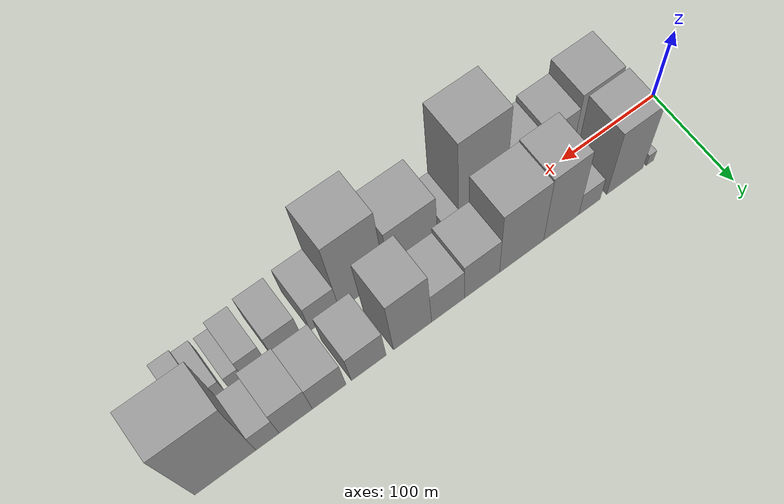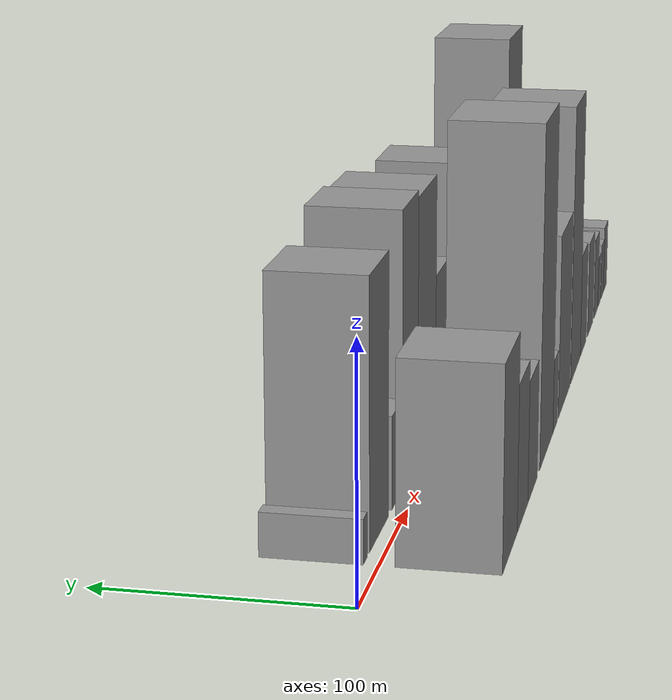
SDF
<sdf version="1.6">
 <world name="default">
  <scene>
   <sky><clouds><speed>12</speed></clouds></sky>
   <ambient>0.4 0.4 0.4 1</ambient>
   <background>0.7 0.7 0.7 1</background>
   <shadows>1</shadows>
  </scene>
  <gravity>0 0 -9.8066</gravity>
  <magnetic_field>6e-06 2.3e-05 -4.2e-05</magnetic_field>
  <physics default="0" name="default_physics" type="ode">
   <ode>
    <solver>
     <type>quick</type>
     <iters>10</iters>
     <sor>1.0</sor>
     <use_dynamic_moi_rescaling>0</use_dynamic_moi_rescaling>
    </solver>
    <constraints>
     <cfm>0</cfm>
     <erp>0.2</erp>
     <contact_max_correcting_vel>100</contact_max_correcting_vel>
     <contact_surface_layer>0.001</contact_surface_layer>
    </constraints>
   </ode>
   <max_step_size>0.004</max_step_size>
   <real_time_factor>1</real_time_factor>
   <real_time_update_rate>250</real_time_update_rate>
  </physics>
  <light name="sun" type="directional">
   <pose>0 0 10 0 0 0</pose>
   <diffuse>0.8 0.8 0.8 1</diffuse>
   <specular>0.2 0.2 0.2 1</specular>
   <attenuation>
    <range>1000</range>
    <constant>0.9</constant>
    <linear>0.01</linear>
    <quadratic>0.001</quadratic>
   </attenuation>
   <direction>-0.5 0.1 -0.9</direction>
  </light>
  <model name="building_1">
   <static>1</static>
   <pose>43.9411 26.0000 0 0.000000 0.000000 1.570796</pose>
   <link name="link">
    <pose>0 0 9.00 0 0 0</pose>
    <collision name="collision"><geometry><box><size>40.0000 7.8822 18.0000</size></box></geometry></collision>
    <visual name="visual">
     <cast_shadows>0</cast_shadows>
     <geometry><box><size>40.0000 7.8822 18.0000</size></box></geometry>
     <material>
      <script>
       <uri>model://grey_wall/materials/scripts</uri>
       <uri>model://grey_wall/materials/textures</uri>
       <name>vrc/grey_wall</name>
      </script>
     </material>
    </visual>
   </link>
  </model>
  <model name="building_2">
   <static>1</static>
   <pose>71.2316 26.0000 0 0.000000 0.000000 1.570796</pose>
   <link name="link">
    <pose>0 0 54.00 0 0 0</pose>
    <collision name="collision"><geometry><box><size>40.0000 38.6990 108.0000</size></box></geometry></collision>
    <visual name="visual">
     <cast_shadows>0</cast_shadows>
     <geometry><box><size>40.0000 38.6990 108.0000</size></box></geometry>
     <material>
      <script>
       <uri>model://grey_wall/materials/scripts</uri>
       <uri>model://grey_wall/materials/textures</uri>
       <name>vrc/grey_wall</name>
      </script>
     </material>
    </visual>
   </link>
  </model>
  <model name="building_3">
   <static>1</static>
   <pose>108.9111 26.0000 0 0.000000 0.000000 1.570796</pose>
   <link name="link">
    <pose>0 0 19.50 0 0 0</pose>
    <collision name="collision"><geometry><box><size>40.0000 22.6600 39.0000</size></box></geometry></collision>
    <visual name="visual">
     <cast_shadows>0</cast_shadows>
     <geometry><box><size>40.0000 22.6600 39.0000</size></box></geometry>
     <material>
      <script>
       <uri>model://grey_wall/materials/scripts</uri>
       <uri>model://grey_wall/materials/textures</uri>
       <name>vrc/grey_wall</name>
      </script>
     </material>
    </visual>
   </link>
  </model>
  <model name="building_4">
   <static>1</static>
   <pose>138.4646 26.0000 0 0.000000 0.000000 1.570796</pose>
   <link name="link">
    <pose>0 0 58.50 0 0 0</pose>
    <collision name="collision"><geometry><box><size>40.0000 36.4471 117.0000</size></box></geometry></collision>
    <visual name="visual">
     <cast_shadows>0</cast_shadows>
     <geometry><box><size>40.0000 36.4471 117.0000</size></box></geometry>
     <material>
      <script>
       <uri>model://grey_wall/materials/scripts</uri>
       <uri>model://grey_wall/materials/textures</uri>
       <name>vrc/grey_wall</name>
      </script>
     </material>
    </visual>
   </link>
  </model>
  <model name="building_5">
   <static>1</static>
   <pose>179.1929 26.0000 0 0.000000 0.000000 1.570796</pose>
   <link name="link">
    <pose>0 0 57.00 0 0 0</pose>
    <collision name="collision"><geometry><box><size>40.0000 45.0095 114.0000</size></box></geometry></collision>
    <visual name="visual">
     <cast_shadows>0</cast_shadows>
     <geometry><box><size>40.0000 45.0095 114.0000</size></box></geometry>
     <material>
      <script>
       <uri>model://grey_wall/materials/scripts</uri>
       <uri>model://grey_wall/materials/textures</uri>
       <name>vrc/grey_wall</name>
      </script>
     </material>
    </visual>
   </link>
  </model>
  <model name="building_6">
   <static>1</static>
   <pose>219.1872 26.0000 0 0.000000 0.000000 1.570796</pose>
   <link name="link">
    <pose>0 0 34.50 0 0 0</pose>
    <collision name="collision"><geometry><box><size>40.0000 34.9791 69.0000</size></box></geometry></collision>
    <visual name="visual">
     <cast_shadows>0</cast_shadows>
     <geometry><box><size>40.0000 34.9791 69.0000</size></box></geometry>
     <material>
      <script>
       <uri>model://grey_wall/materials/scripts</uri>
       <uri>model://grey_wall/materials/textures</uri>
       <name>vrc/grey_wall</name>
      </script>
     </material>
    </visual>
   </link>
  </model>
  <model name="building_7">
   <static>1</static>
   <pose>252.8555 26.0000 0 0.000000 0.000000 1.570796</pose>
   <link name="link">
    <pose>0 0 30.00 0 0 0</pose>
    <collision name="collision"><geometry><box><size>40.0000 32.3575 60.0000</size></box></geometry></collision>
    <visual name="visual">
     <cast_shadows>0</cast_shadows>
     <geometry><box><size>40.0000 32.3575 60.0000</size></box></geometry>
     <material>
      <script>
       <uri>model://grey_wall/materials/scripts</uri>
       <uri>model://grey_wall/materials/textures</uri>
       <name>vrc/grey_wall</name>
      </script>
     </material>
    </visual>
   </link>
  </model>
  <model name="building_8">
   <static>1</static>
   <pose>287.4369 26.0000 0 0.000000 0.000000 1.570796</pose>
   <link name="link">
    <pose>0 0 52.50 0 0 0</pose>
    <collision name="collision"><geometry><box><size>40.0000 36.8053 105.0000</size></box></geometry></collision>
    <visual name="visual">
     <cast_shadows>0</cast_shadows>
     <geometry><box><size>40.0000 36.8053 105.0000</size></box></geometry>
     <material>
      <script>
       <uri>model://grey_wall/materials/scripts</uri>
       <uri>model://grey_wall/materials/textures</uri>
       <name>vrc/grey_wall</name>
      </script>
     </material>
    </visual>
   </link>
  </model>
  <model name="building_9">
   <static>1</static>
   <pose>329.3068 26.0000 0 0.000000 0.000000 1.570796</pose>
   <link name="link">
    <pose>0 0 28.50 0 0 0</pose>
    <collision name="collision"><geometry><box><size>40.0000 32.9345 57.0000</size></box></geometry></collision>
    <visual name="visual">
     <cast_shadows>0</cast_shadows>
     <geometry><box><size>40.0000 32.9345 57.0000</size></box></geometry>
     <material>
      <script>
       <uri>model://grey_wall/materials/scripts</uri>
       <uri>model://grey_wall/materials/textures</uri>
       <name>vrc/grey_wall</name>
      </script>
     </material>
    </visual>
   </link>
  </model>
  <model name="building_10">
   <static>1</static>
   <pose>366.4222 26.0000 0 0.000000 0.000000 1.570796</pose>
   <link name="link">
    <pose>0 0 27.00 0 0 0</pose>
    <collision name="collision"><geometry><box><size>40.0000 31.2964 54.0000</size></box></geometry></collision>
    <visual name="visual">
     <cast_shadows>0</cast_shadows>
     <geometry><box><size>40.0000 31.2964 54.0000</size></box></geometry>
     <material>
      <script>
       <uri>model://grey_wall/materials/scripts</uri>
       <uri>model://grey_wall/materials/textures</uri>
       <name>vrc/grey_wall</name>
      </script>
     </material>
    </visual>
   </link>
  </model>
  <model name="building_11">
   <static>1</static>
   <pose>397.2394 26.0000 0 0.000000 0.000000 1.570796</pose>
   <link name="link">
    <pose>0 0 28.50 0 0 0</pose>
    <collision name="collision"><geometry><box><size>40.0000 30.3379 57.0000</size></box></geometry></collision>
    <visual name="visual">
     <cast_shadows>0</cast_shadows>
     <geometry><box><size>40.0000 30.3379 57.0000</size></box></geometry>
     <material>
      <script>
       <uri>model://grey_wall/materials/scripts</uri>
       <uri>model://grey_wall/materials/textures</uri>
       <name>vrc/grey_wall</name>
      </script>
     </material>
    </visual>
   </link>
  </model>
  <model name="building_12">
   <static>1</static>
   <pose>422.9130 26.0000 0 0.000000 0.000000 1.570796</pose>
   <link name="link">
    <pose>0 0 21.00 0 0 0</pose>
    <collision name="collision"><geometry><box><size>40.0000 21.0094 42.0000</size></box></geometry></collision>
    <visual name="visual">
     <cast_shadows>0</cast_shadows>
     <geometry><box><size>40.0000 21.0094 42.0000</size></box></geometry>
     <material>
      <script>
       <uri>model://grey_wall/materials/scripts</uri>
       <uri>model://grey_wall/materials/textures</uri>
       <name>vrc/grey_wall</name>
      </script>
     </material>
    </visual>
   </link>
  </model>
  <model name="building_13">
   <static>1</static>
   <pose>460.5681 26.0000 0 0.000000 0.000000 1.570796</pose>
   <link name="link">
    <pose>0 0 69.00 0 0 0</pose>
    <collision name="collision"><geometry><box><size>40.0000 54.3009 138.0000</size></box></geometry></collision>
    <visual name="visual">
     <cast_shadows>0</cast_shadows>
     <geometry><box><size>40.0000 54.3009 138.0000</size></box></geometry>
     <material>
      <script>
       <uri>model://grey_wall/materials/scripts</uri>
       <uri>model://grey_wall/materials/textures</uri>
       <name>vrc/grey_wall</name>
      </script>
     </material>
    </visual>
   </link>
  </model>
  <model name="building_14">
   <static>1</static>
   <pose>60.9795 -26.0000 0 0.000000 0.000000 1.570796</pose>
   <link name="link">
    <pose>0 0 40.50 0 0 0</pose>
    <collision name="collision"><geometry><box><size>40.0000 41.9589 81.0000</size></box></geometry></collision>
    <visual name="visual">
     <cast_shadows>0</cast_shadows>
     <geometry><box><size>40.0000 41.9589 81.0000</size></box></geometry>
     <material>
      <script>
       <uri>model://grey_wall/materials/scripts</uri>
       <uri>model://grey_wall/materials/textures</uri>
       <name>vrc/grey_wall</name>
      </script>
     </material>
    </visual>
   </link>
  </model>
  <model name="building_15">
   <static>1</static>
   <pose>98.3897 -26.0000 0 0.000000 0.000000 1.570796</pose>
   <link name="link">
    <pose>0 0 30.00 0 0 0</pose>
    <collision name="collision"><geometry><box><size>40.0000 32.8616 60.0000</size></box></geometry></collision>
    <visual name="visual">
     <cast_shadows>0</cast_shadows>
     <geometry><box><size>40.0000 32.8616 60.0000</size></box></geometry>
     <material>
      <script>
       <uri>model://grey_wall/materials/scripts</uri>
       <uri>model://grey_wall/materials/textures</uri>
       <name>vrc/grey_wall</name>
      </script>
     </material>
    </visual>
   </link>
  </model>
  <model name="building_16">
   <static>1</static>
   <pose>130.0673 -26.0000 0 0.000000 0.000000 1.570796</pose>
   <link name="link">
    <pose>0 0 25.50 0 0 0</pose>
    <collision name="collision"><geometry><box><size>40.0000 30.4935 51.0000</size></box></geometry></collision>
    <visual name="visual">
     <cast_shadows>0</cast_shadows>
     <geometry><box><size>40.0000 30.4935 51.0000</size></box></geometry>
     <material>
      <script>
       <uri>model://grey_wall/materials/scripts</uri>
       <uri>model://grey_wall/materials/textures</uri>
       <name>vrc/grey_wall</name>
      </script>
     </material>
    </visual>
   </link>
  </model>
  <model name="building_17">
   <static>1</static>
   <pose>178.4989 -26.0000 0 0.000000 0.000000 1.570796</pose>
   <link name="link">
    <pose>0 0 73.50 0 0 0</pose>
    <collision name="collision"><geometry><box><size>40.0000 48.3698 147.0000</size></box></geometry></collision>
    <visual name="visual">
     <cast_shadows>0</cast_shadows>
     <geometry><box><size>40.0000 48.3698 147.0000</size></box></geometry>
     <material>
      <script>
       <uri>model://grey_wall/materials/scripts</uri>
       <uri>model://grey_wall/materials/textures</uri>
       <name>vrc/grey_wall</name>
      </script>
     </material>
    </visual>
   </link>
  </model>
  <model name="building_18">
   <static>1</static>
   <pose>211.1739 -26.0000 0 0.000000 0.000000 1.570796</pose>
   <link name="link">
    <pose>0 0 16.50 0 0 0</pose>
    <collision name="collision"><geometry><box><size>40.0000 16.9802 33.0000</size></box></geometry></collision>
    <visual name="visual">
     <cast_shadows>0</cast_shadows>
     <geometry><box><size>40.0000 16.9802 33.0000</size></box></geometry>
     <material>
      <script>
       <uri>model://grey_wall/materials/scripts</uri>
       <uri>model://grey_wall/materials/textures</uri>
       <name>vrc/grey_wall</name>
      </script>
     </material>
    </visual>
   </link>
  </model>
  <model name="building_19">
   <static>1</static>
   <pose>247.5846 -26.0000 0 0.000000 0.000000 1.570796</pose>
   <link name="link">
    <pose>0 0 42.00 0 0 0</pose>
    <collision name="collision"><geometry><box><size>40.0000 47.8412 84.0000</size></box></geometry></collision>
    <visual name="visual">
     <cast_shadows>0</cast_shadows>
     <geometry><box><size>40.0000 47.8412 84.0000</size></box></geometry>
     <material>
      <script>
       <uri>model://grey_wall/materials/scripts</uri>
       <uri>model://grey_wall/materials/textures</uri>
       <name>vrc/grey_wall</name>
      </script>
     </material>
    </visual>
   </link>
  </model>
  <model name="building_20">
   <static>1</static>
   <pose>297.8035 -26.0000 0 0.000000 0.000000 1.570796</pose>
   <link name="link">
    <pose>0 0 66.00 0 0 0</pose>
    <collision name="collision"><geometry><box><size>40.0000 44.5967 132.0000</size></box></geometry></collision>
    <visual name="visual">
     <cast_shadows>0</cast_shadows>
     <geometry><box><size>40.0000 44.5967 132.0000</size></box></geometry>
     <material>
      <script>
       <uri>model://grey_wall/materials/scripts</uri>
       <uri>model://grey_wall/materials/textures</uri>
       <name>vrc/grey_wall</name>
      </script>
     </material>
    </visual>
   </link>
  </model>
  <model name="building_21">
   <static>1</static>
   <pose>334.0438 -26.0000 0 0.000000 0.000000 1.570796</pose>
   <link name="link">
    <pose>0 0 25.50 0 0 0</pose>
    <collision name="collision"><geometry><box><size>40.0000 27.8838 51.0000</size></box></geometry></collision>
    <visual name="visual">
     <cast_shadows>0</cast_shadows>
     <geometry><box><size>40.0000 27.8838 51.0000</size></box></geometry>
     <material>
      <script>
       <uri>model://grey_wall/materials/scripts</uri>
       <uri>model://grey_wall/materials/textures</uri>
       <name>vrc/grey_wall</name>
      </script>
     </material>
    </visual>
   </link>
  </model>
  <model name="building_22">
   <static>1</static>
   <pose>369.7106 -26.0000 0 0.000000 0.000000 1.570796</pose>
   <link name="link">
    <pose>0 0 24.00 0 0 0</pose>
    <collision name="collision"><geometry><box><size>40.0000 27.4498 48.0000</size></box></geometry></collision>
    <visual name="visual">
     <cast_shadows>0</cast_shadows>
     <geometry><box><size>40.0000 27.4498 48.0000</size></box></geometry>
     <material>
      <script>
       <uri>model://grey_wall/materials/scripts</uri>
       <uri>model://grey_wall/materials/textures</uri>
       <name>vrc/grey_wall</name>
      </script>
     </material>
    </visual>
   </link>
  </model>
  <model name="building_23">
   <static>1</static>
   <pose>399.9405 -26.0000 0 0.000000 0.000000 1.570796</pose>
   <link name="link">
    <pose>0 0 21.00 0 0 0</pose>
    <collision name="collision"><geometry><box><size>40.0000 21.0100 42.0000</size></box></geometry></collision>
    <visual name="visual">
     <cast_shadows>0</cast_shadows>
     <geometry><box><size>40.0000 21.0100 42.0000</size></box></geometry>
     <material>
      <script>
       <uri>model://grey_wall/materials/scripts</uri>
       <uri>model://grey_wall/materials/textures</uri>
       <name>vrc/grey_wall</name>
      </script>
     </material>
    </visual>
   </link>
  </model>
  <model name="building_24">
   <static>1</static>
   <pose>416.8328 -26.0000 0 0.000000 0.000000 1.570796</pose>
   <link name="link">
    <pose>0 0 13.50 0 0 0</pose>
    <collision name="collision"><geometry><box><size>40.0000 12.7745 27.0000</size></box></geometry></collision>
    <visual name="visual">
     <cast_shadows>0</cast_shadows>
     <geometry><box><size>40.0000 12.7745 27.0000</size></box></geometry>
     <material>
      <script>
       <uri>model://grey_wall/materials/scripts</uri>
       <uri>model://grey_wall/materials/textures</uri>
       <name>vrc/grey_wall</name>
      </script>
     </material>
    </visual>
   </link>
  </model>
  <model name="building_25">
   <static>1</static>
   <pose>434.7739 -26.0000 0 0.000000 0.000000 1.570796</pose>
   <link name="link">
    <pose>0 0 15.00 0 0 0</pose>
    <collision name="collision"><geometry><box><size>40.0000 15.1077 30.0000</size></box></geometry></collision>
    <visual name="visual">
     <cast_shadows>0</cast_shadows>
     <geometry><box><size>40.0000 15.1077 30.0000</size></box></geometry>
     <material>
      <script>
       <uri>model://grey_wall/materials/scripts</uri>
       <uri>model://grey_wall/materials/textures</uri>
       <name>vrc/grey_wall</name>
      </script>
     </material>
    </visual>
   </link>
  </model>
  <model name="building_26">
   <static>1</static>
   <pose>451.7394 -26.0000 0 0.000000 0.000000 1.570796</pose>
   <link name="link">
    <pose>0 0 18.00 0 0 0</pose>
    <collision name="collision"><geometry><box><size>40.0000 18.8233 36.0000</size></box></geometry></collision>
    <visual name="visual">
     <cast_shadows>0</cast_shadows>
     <geometry><box><size>40.0000 18.8233 36.0000</size></box></geometry>
     <material>
      <script>
       <uri>model://grey_wall/materials/scripts</uri>
       <uri>model://grey_wall/materials/textures</uri>
       <name>vrc/grey_wall</name>
      </script>
     </material>
    </visual>
   </link>
  </model>
 </world>
</sdf>
